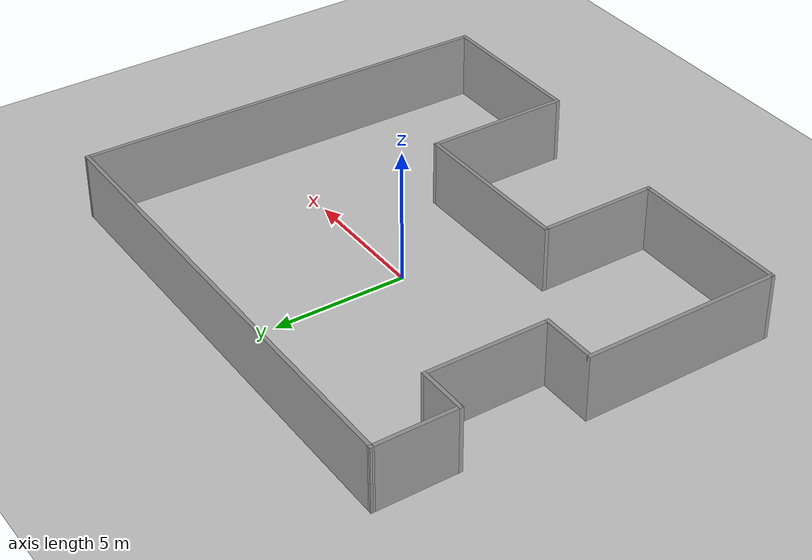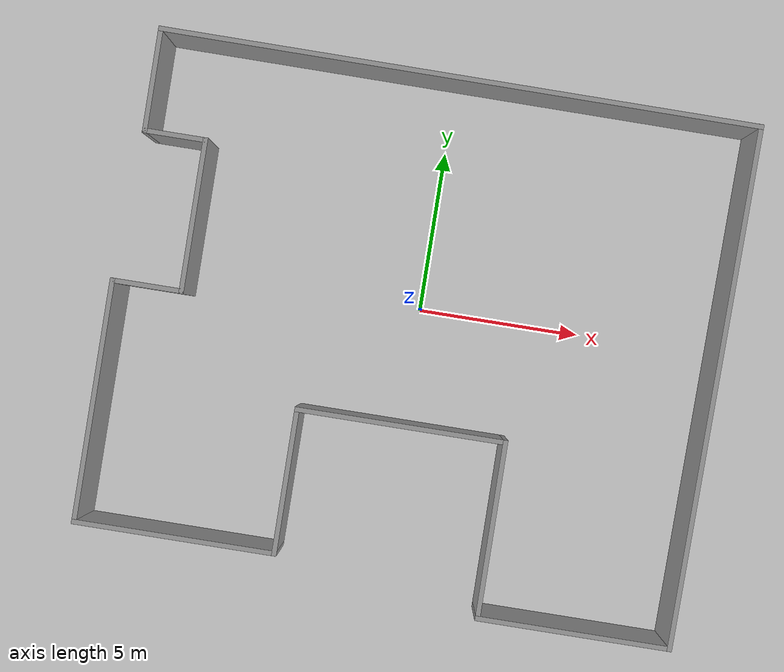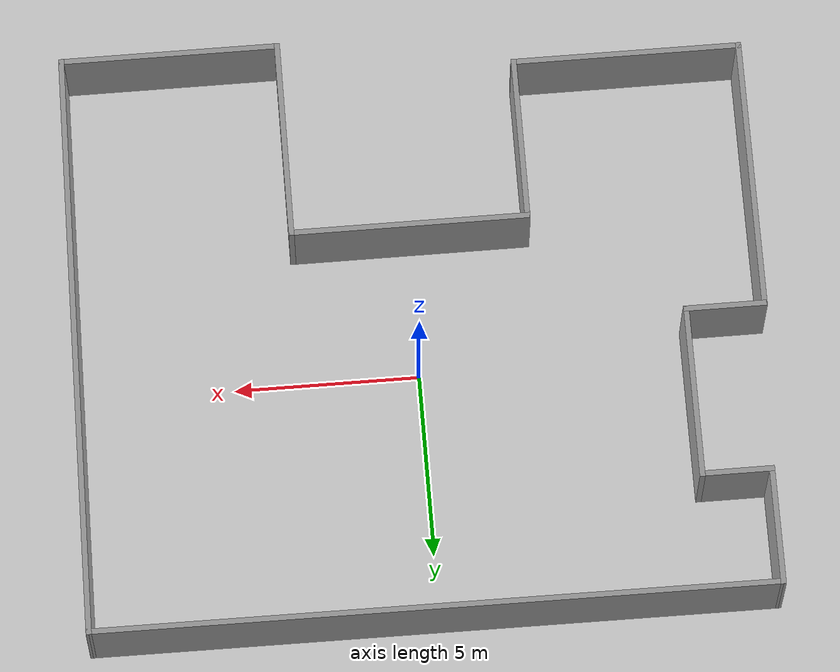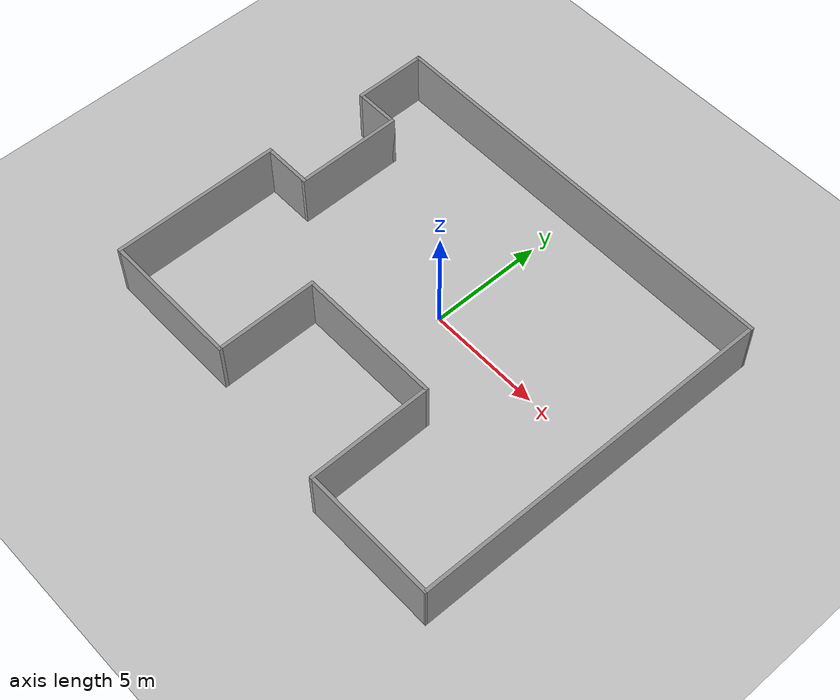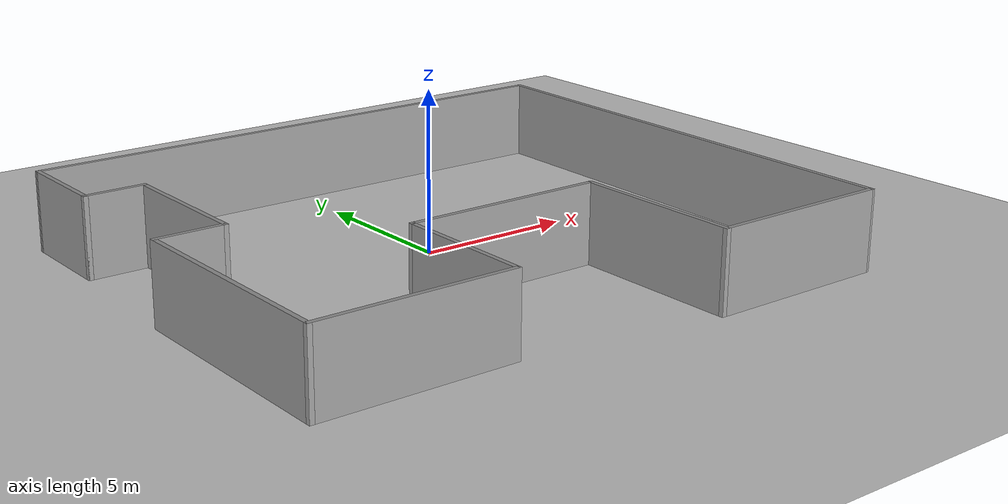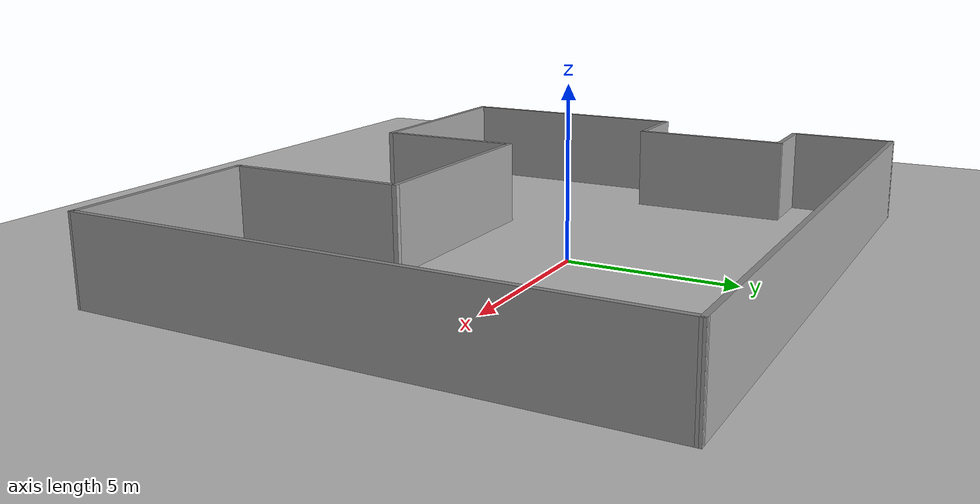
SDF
<sdf version="1.7">
 <world name="default">
  <light name="sun" type="directional">
   <pose>0 0 10 0 -0 0</pose>
   <diffuse>0.8 0.8 0.8 1</diffuse>
   <specular>0.2 0.2 0.2 1</specular>
   <attenuation>
    <range>1000</range>
    <constant>0.9</constant>
    <linear>0.01</linear>
    <quadratic>0.001</quadratic>
   </attenuation>
   <direction>-0.5 0.1 -0.9</direction>
   <spot><inner_angle>0</inner_angle><outer_angle>0</outer_angle><falloff>0</falloff></spot>
  </light>
  <model name="ground_plane">
   <static>1</static>
   <link name="link">
    <collision name="collision">
     <geometry><plane><normal>0 0 1</normal><size>100 100</size></plane></geometry>
     <surface>
      <contact><collide_bitmask>65535</collide_bitmask></contact>
      <friction><ode><mu>100</mu><mu2>50</mu2></ode></friction>
     </surface>
    </collision>
    <visual name="visual">
     <cast_shadows>0</cast_shadows>
     <geometry><plane><normal>0 0 1</normal><size>100 100</size></plane></geometry>
     <material>
      <script><uri>file://media/materials/scripts/gazebo.material</uri><name>Gazebo/Grey</name></script>
     </material>
    </visual>
   </link>
  </model>
  <gravity>0 0 -9.8</gravity>
  <magnetic_field>6e-06 2.3e-05 -4.2e-05</magnetic_field>
  <atmosphere type="adiabatic"/>
  <physics type="ode">
   <max_step_size>0.001</max_step_size>
   <real_time_factor>1</real_time_factor>
   <real_time_update_rate>1000</real_time_update_rate>
  </physics>
  <scene><ambient>0.4 0.4 0.4 1</ambient><background>0.7 0.7 0.7 1</background><shadows>1</shadows></scene>
  <spherical_coordinates>
   <surface_model>EARTH_WGS84</surface_model>
   <latitude_deg>0</latitude_deg>
   <longitude_deg>0</longitude_deg>
   <elevation>0</elevation>
   <heading_deg>0</heading_deg>
  </spherical_coordinates>
  <model name="closed_room">
   <pose>-0.018185 -0.911996 0 0 -0 0</pose>
   <link name="Wall_22">
    <collision name="Wall_22_Collision">
     <geometry><box><size>18.4561 0.15 2.5</size></box></geometry>
     <pose>0 0 1.25 0 -0 0</pose>
    </collision>
    <visual name="Wall_22_Visual">
     <pose>0 0 1.25 0 -0 0</pose>
     <geometry><box><size>18.4561 0.15 2.5</size></box></geometry>
     <material>
      <script><uri>file://media/materials/scripts/gazebo.material</uri><name>Gazebo/Grey</name></script>
      <ambient>1 1 1 1</ambient>
     </material>
     <meta><layer>0</layer></meta>
    </visual>
    <pose>0.124403 7.97107 0 0 -0 -0.003744</pose>
   </link>
   <link name="Wall_23">
    <collision name="Wall_23_Collision">
     <geometry><box><size>16.0933 0.15 2.5</size></box></geometry>
     <pose>0 0 1.25 0 -0 0</pose>
    </collision>
    <visual name="Wall_23_Visual">
     <pose>0 0 1.25 0 -0 0</pose>
     <geometry><box><size>16.0933 0.15 2.5</size></box></geometry>
     <material>
      <script><uri>file://media/materials/scripts/gazebo.material</uri><name>Gazebo/Grey</name></script>
      <ambient>1 1 1 1</ambient>
     </material>
     <meta><layer>0</layer></meta>
    </visual>
    <pose>9.1494 -0.033813 0 0 -0 -1.58685</pose>
   </link>
   <link name="Wall_24">
    <collision name="Wall_24_Collision">
     <geometry><box><size>6 0.15 2.5</size></box></geometry>
     <pose>0 0 1.25 0 -0 0</pose>
    </collision>
    <visual name="Wall_24_Visual">
     <pose>0 0 1.25 0 -0 0</pose>
     <geometry><box><size>6 0.15 2.5</size></box></geometry>
     <material>
      <script><uri>file://media/materials/scripts/gazebo.material</uri><name>Gazebo/Grey</name></script>
      <ambient>1 1 1 1</ambient>
     </material>
     <meta><layer>0</layer></meta>
    </visual>
    <pose>6.09642 -8.00443 0 0 -0 3.14159</pose>
   </link>
   <link name="Wall_25">
    <collision name="Wall_25_Collision">
     <geometry><box><size>5.5 0.15 2.5</size></box></geometry>
     <pose>0 0 1.25 0 -0 0</pose>
    </collision>
    <visual name="Wall_25_Visual">
     <pose>0 0 1.25 0 -0 0</pose>
     <geometry><box><size>5.5 0.15 2.5</size></box></geometry>
     <material>
      <script><uri>file://media/materials/scripts/gazebo.material</uri><name>Gazebo/Grey</name></script>
      <ambient>1 1 1 1</ambient>
     </material>
     <meta><layer>0</layer></meta>
    </visual>
    <pose>3.17142 -5.32943 0 0 -0 1.5708</pose>
   </link>
   <link name="Wall_26">
    <collision name="Wall_26_Collision">
     <geometry><box><size>6.5 0.15 2.5</size></box></geometry>
     <pose>0 0 1.25 0 -0 0</pose>
    </collision>
    <visual name="Wall_26_Visual">
     <pose>0 0 1.25 0 -0 0</pose>
     <geometry><box><size>6.5 0.15 2.5</size></box></geometry>
     <material>
      <script><uri>file://media/materials/scripts/gazebo.material</uri><name>Gazebo/Grey</name></script>
      <ambient>1 1 1 1</ambient>
     </material>
     <meta><layer>0</layer></meta>
    </visual>
    <pose>-0.003585 -2.65443 0 0 -0 3.14159</pose>
   </link>
   <link name="Wall_27">
    <collision name="Wall_27_Collision">
     <geometry><box><size>4.54023 0.15 2.5</size></box></geometry>
     <pose>0 0 1.25 0 -0 0</pose>
    </collision>
    <visual name="Wall_27_Visual">
     <pose>0 0 1.25 0 -0 0</pose>
     <geometry><box><size>4.54023 0.15 2.5</size></box></geometry>
     <material>
      <script><uri>file://media/materials/scripts/gazebo.material</uri><name>Gazebo/Grey</name></script>
      <ambient>1 1 1 1</ambient>
     </material>
     <meta><layer>0</layer></meta>
    </visual>
    <pose>-3.17858 -4.84954 0 0 -0 -1.5708</pose>
   </link>
   <link name="Wall_28">
    <collision name="Wall_28_Collision">
     <geometry><box><size>6.25 0.15 2.5</size></box></geometry>
     <pose>0 0 1.25 0 -0 0</pose>
    </collision>
    <visual name="Wall_28_Visual">
     <pose>0 0 1.25 0 -0 0</pose>
     <geometry><box><size>6.25 0.15 2.5</size></box></geometry>
     <material>
      <script><uri>file://media/materials/scripts/gazebo.material</uri><name>Gazebo/Grey</name></script>
      <ambient>1 1 1 1</ambient>
     </material>
     <meta><layer>0</layer></meta>
    </visual>
    <pose>-6.22858 -7.04466 0 0 -0 3.14159</pose>
   </link>
   <link name="Wall_29">
    <collision name="Wall_29_Collision">
     <geometry><box><size>7.5 0.15 2.5</size></box></geometry>
     <pose>0 0 1.25 0 -0 0</pose>
    </collision>
    <visual name="Wall_29_Visual">
     <pose>0 0 1.25 0 -0 0</pose>
     <geometry><box><size>7.5 0.15 2.5</size></box></geometry>
     <material>
      <script><uri>file://media/materials/scripts/gazebo.material</uri><name>Gazebo/Grey</name></script>
      <ambient>1 1 1 1</ambient>
     </material>
     <meta><layer>0</layer></meta>
    </visual>
    <pose>-9.27858 -3.36966 0 0 -0 1.5708</pose>
   </link>
   <link name="Wall_30">
    <collision name="Wall_30_Collision">
     <geometry><box><size>2.25 0.15 2.5</size></box></geometry>
     <pose>0 0 1.25 0 -0 0</pose>
    </collision>
    <visual name="Wall_30_Visual">
     <pose>0 0 1.25 0 -0 0</pose>
     <geometry><box><size>2.25 0.15 2.5</size></box></geometry>
     <material>
      <script><uri>file://media/materials/scripts/gazebo.material</uri><name>Gazebo/Grey</name></script>
      <ambient>1 1 1 1</ambient>
     </material>
     <meta><layer>0</layer></meta>
    </visual>
    <pose>-8.22859 0.305344 0 0 -0 0</pose>
   </link>
   <link name="Wall_31">
    <collision name="Wall_31_Collision">
     <geometry><box><size>4.75 0.15 2.5</size></box></geometry>
     <pose>0 0 1.25 0 -0 0</pose>
    </collision>
    <visual name="Wall_31_Visual">
     <pose>0 0 1.25 0 -0 0</pose>
     <geometry><box><size>4.75 0.15 2.5</size></box></geometry>
     <material>
      <script><uri>file://media/materials/scripts/gazebo.material</uri><name>Gazebo/Grey</name></script>
      <ambient>1 1 1 1</ambient>
     </material>
     <meta><layer>0</layer></meta>
    </visual>
    <pose>-7.17858 2.60534 0 0 -0 1.5708</pose>
   </link>
   <link name="Wall_32">
    <collision name="Wall_32_Collision">
     <geometry><box><size>2 0.15 2.5</size></box></geometry>
     <pose>0 0 1.25 0 -0 0</pose>
    </collision>
    <visual name="Wall_32_Visual">
     <pose>0 0 1.25 0 -0 0</pose>
     <geometry><box><size>2 0.15 2.5</size></box></geometry>
     <material>
      <script><uri>file://media/materials/scripts/gazebo.material</uri><name>Gazebo/Grey</name></script>
      <ambient>1 1 1 1</ambient>
     </material>
     <meta><layer>0</layer></meta>
    </visual>
    <pose>-8.10359 4.90534 0 0 -0 3.14159</pose>
   </link>
   <link name="Wall_33">
    <collision name="Wall_33_Collision">
     <geometry><box><size>3.25 0.15 2.5</size></box></geometry>
     <pose>0 0 1.25 0 -0 0</pose>
    </collision>
    <visual name="Wall_33_Visual">
     <pose>0 0 1.25 0 -0 0</pose>
     <geometry><box><size>3.25 0.15 2.5</size></box></geometry>
     <material>
      <script><uri>file://media/materials/scripts/gazebo.material</uri><name>Gazebo/Grey</name></script>
      <ambient>1 1 1 1</ambient>
     </material>
     <meta><layer>0</layer></meta>
    </visual>
    <pose>-9.02858 6.45534 0 0 -0 1.5708</pose>
   </link>
   <static>1</static>
  </model>
 </world>
</sdf>
